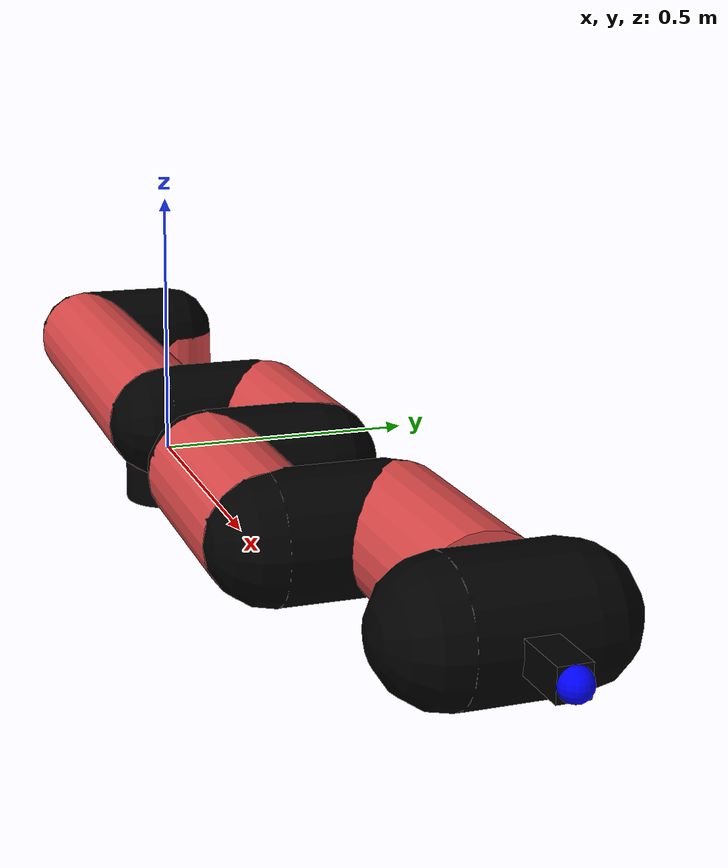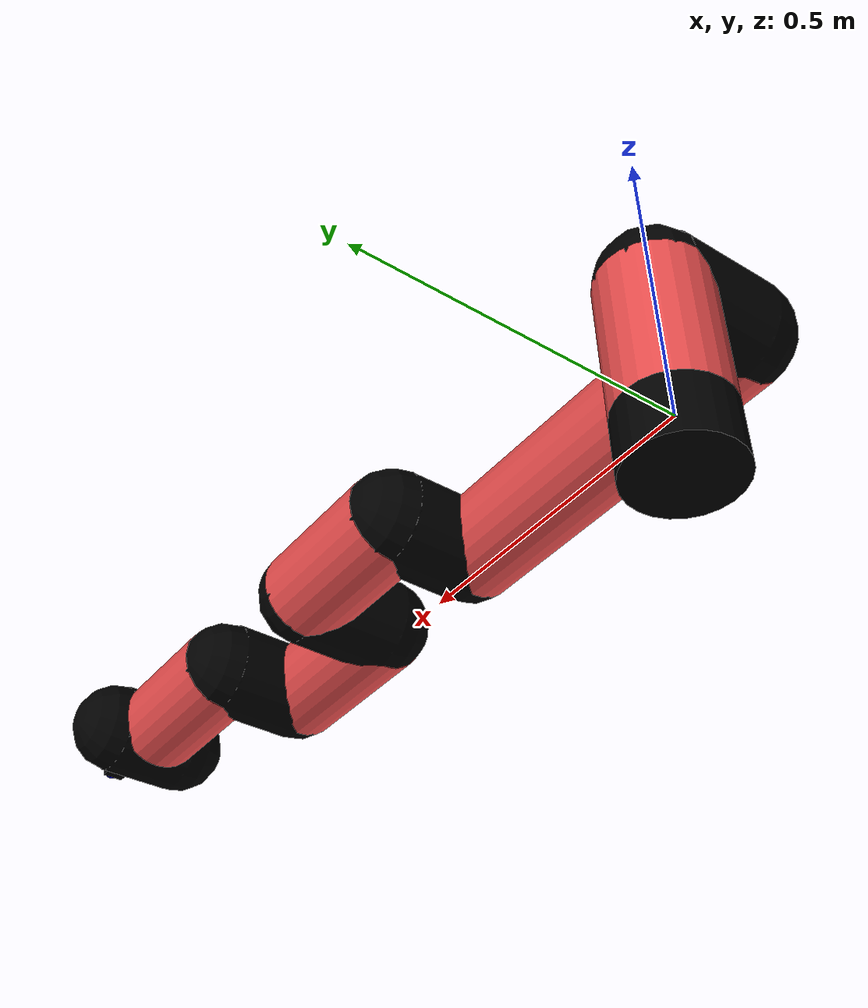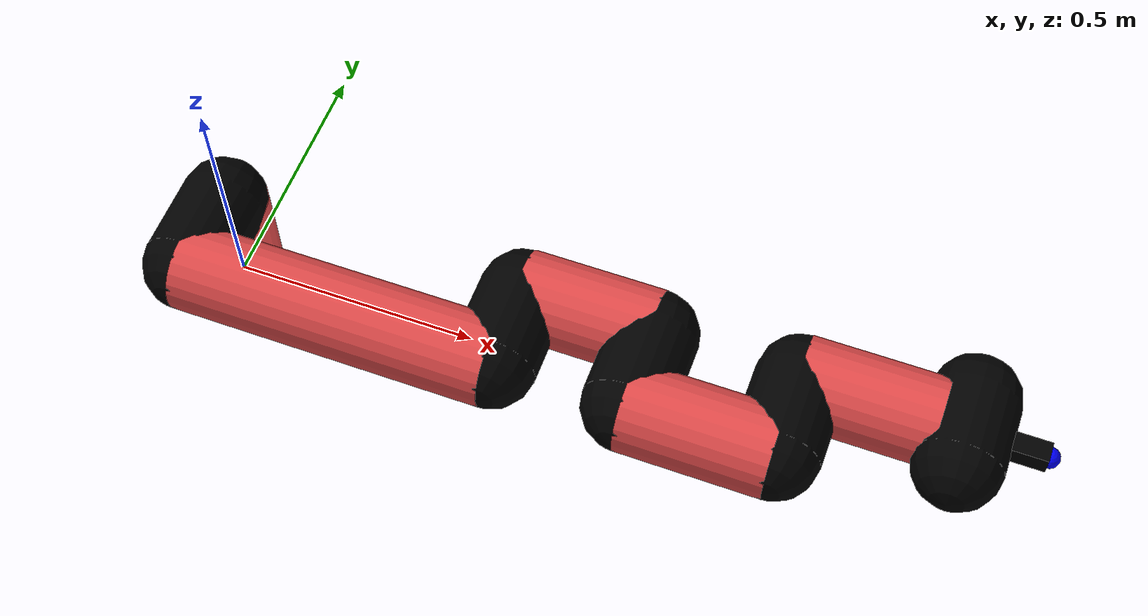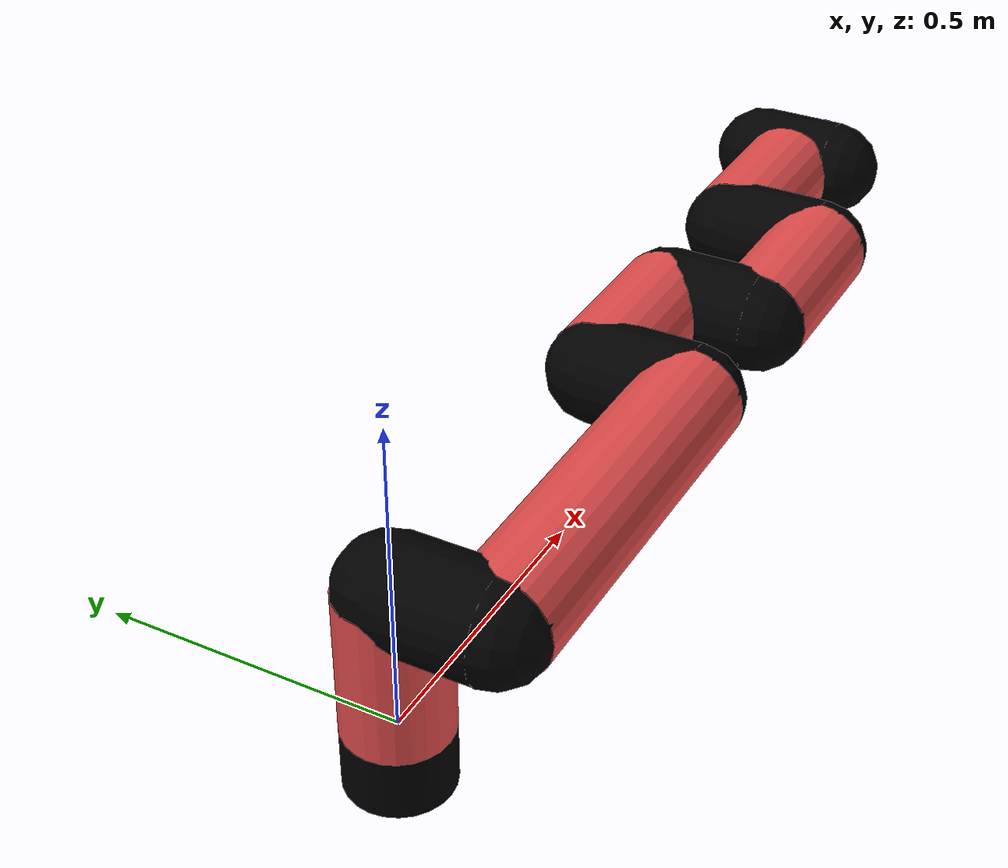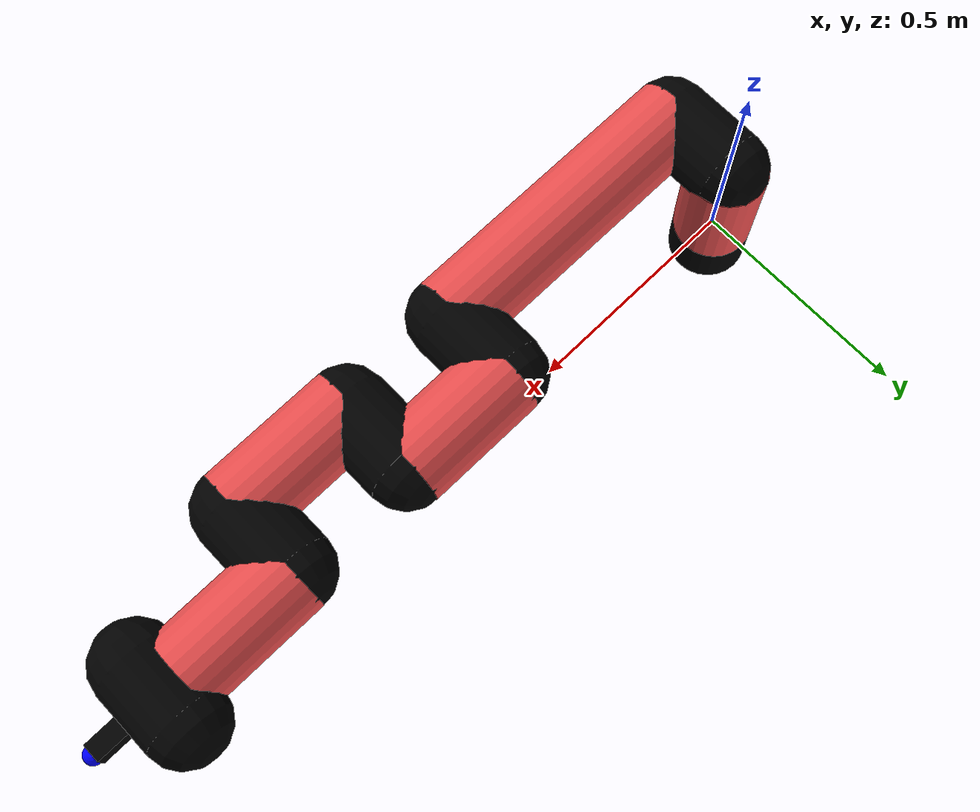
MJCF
<mujoco model="manipulator">
		<compiler angle="degree" coordinate="local" inertiafromgeom="auto" meshdir="meshes/"/>
		<option gravity="0 0 0" integrator="RK4" iterations="30" timestep="0.01"/>

		<default>
		<joint armature="1" limited="true" stiffness="10" damping="15" frictionloss="5.0"/>
		<geom conaffinity="1" condim="3" contype="1" friction=".5 .1 .1" margin="0.002"/>
		<motor ctrllimited="true"/>
		<position ctrllimited="true"/>
		</default>

		<asset>
		<texture builtin="gradient" height="100" rgb1="1.0 1.0 1.0" rgb2="1.0 1.0 1.0" type="skybox" width="100"/>
		<texture builtin="flat" height="32" name="arm_tex" rgb1="0.9 0.3 0.3" type="2d" width="32"/>
		<texture builtin="flat" height="32" name="gripper_tex" rgb1="0.0 0.0 0.0" type="cube" width="32"/>

		<material name="arm_mat" shininess="0.1" specular="0.1" texture="arm_tex"/>
		<material name="gripper_mat" shininess="1" specular="1" texture="gripper_tex"/>
		</asset>

		<worldbody>
		<light cutoff="45" diffuse=".8 .8 .8" dir="0 0.16 -1" directional="false" name="light" pos="0 -2.0 8.0" specular="0.3 0.3 0.3"/>

		<body name="base_link" pos="0 0 -0.1">
		<geom fromto="0 0 0 0 0 0.1" material="arm_mat" name="base_link" rgba="0.0 0.0 0.0 1" size="0.085" type="cylinder"/>
		</body>

		<body name="l1" pos="0 0 0">
<geom fromto="0 0 0 0 0 0.24" material="arm_mat" name="l1" rgba="0.9 0.3 0.3 1" size="0.085" type="cylinder"/>
<geom fromto="0 0 0.24 0 -0.16 0.24" material="arm_mat" name="l1_ex" rgba="0.0 0.0 0.0 1" size="0.085" type="capsule"/>
<joint axis="0 0 1" name="j1" pos="0 0 0" range="-90 90" damping="35.78" frictionloss="7.7"/>

<body name="l2" pos="0 -0.16 0.24">
<geom fromto="0 0 0 0.62 0 0" material="arm_mat" name="l2" rgba="0.9 0.3 0.3 1" size="0.085" type="cylinder"/>
<geom fromto="0.62 0 0 0.62 0.16 0" material="arm_mat" name="l2_ex" rgba="0.0 0.0 0.0 1" size="0.085" type="capsule"/>
<joint axis="0.06 1.22 0.23" name="j2" pos="0 0 0" range="-90 60" damping="28.82" frictionloss="8.08"/>

<body name="l3" pos="0.62 0.16 0">
<geom fromto="0 0 0 0.26 0 0" material="arm_mat" name="l3" rgba="0.9 0.3 0.3 1" size="0.085" type="cylinder"/>
<geom fromto="0.26 0 0 0.26 -0.16 0" material="arm_mat" name="l3_ex" rgba="0.0 0.0 0.0 1" size="0.085" type="capsule"/>
<joint axis="0.03 1.21 0.07" name="j3" pos="0 0 0" range="-30 60" damping="33.66" frictionloss="8.01"/>

<body name="l4" pos="0.26 -0.16 0">
<geom fromto="0 0 0 0.28 0 0" material="arm_mat" name="l4" rgba="0.9 0.3 0.3 1" size="0.085" type="cylinder"/>
<geom fromto="0.28 0 0 0.28 0.16 0" material="arm_mat" name="l4_ex" rgba="0.0 0.0 0.0 1" size="0.085" type="capsule"/>
<joint axis="-0.05 0.99 0.05" name="j4" pos="0 0 0" range="-30 60" damping="37.05" frictionloss="12.05"/>

<body name="l5" pos="0.28 0.16 0">
<geom fromto="0 0 0 0.26 0 0" material="arm_mat" name="l5" rgba="0.9 0.3 0.3 1" size="0.085" type="cylinder"/>
<joint axis="0.02 1.21 0.21" name="j5" pos="0 0 0" range="-30 60" damping="29.66" frictionloss="8.0"/>

<body name="gripper" pos="0.26 0 0">
<geom fromto="0.05 -0.07 0 0.05 0.07 0" material="gripper_mat" name="gripper" rgba="0.0 0.0 0.0 1" size="0.085" type="capsule"/><joint axis="1 0 0" name="j6" pos="0 0 0" range="-90 90" damping="15" frictionloss="5.0"/><body name="finger" pos="0.1 0 0">
<geom fromto="0 0.0 0 0.1 0.0 0" material="gripper_mat" name="finger" rgba="0.0 0.0 0.0 1" size="0.020 0.06 0.06" type="box"/>
</body>
<site name="current" pos="0.2 0. 0.0" rgba="0. 0. 1.0 1" size="0.02" type="sphere"/>
</body>
</body>
</body>
</body>
</body>
</body>
</worldbody>
<actuator>
<motor ctrllimited="true" ctrlrange="-1.0 1.0" joint="j1" gear="69.59"/>
<motor ctrllimited="true" ctrlrange="-1.0 1.0" joint="j2" gear="66.7"/>
<motor ctrllimited="true" ctrlrange="-1.0 1.0" joint="j3" gear="96.43"/>
<motor ctrllimited="true" ctrlrange="-1.0 1.0" joint="j4" gear="71.76"/>
<motor ctrllimited="true" ctrlrange="-1.0 1.0" joint="j5" gear="86.08"/>
<motor ctrllimited="true" ctrlrange="-1.0 1.0" joint="j6" gear="80"/>
</actuator>
</mujoco>
